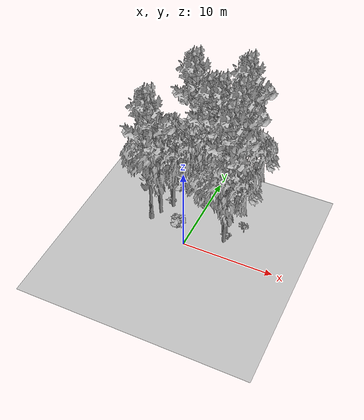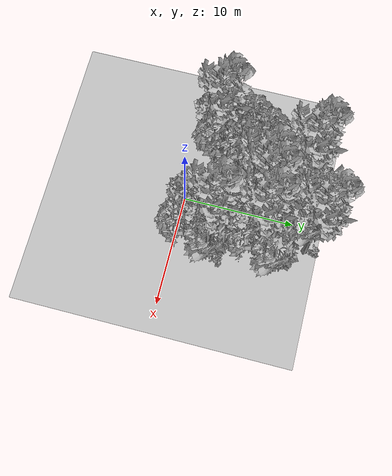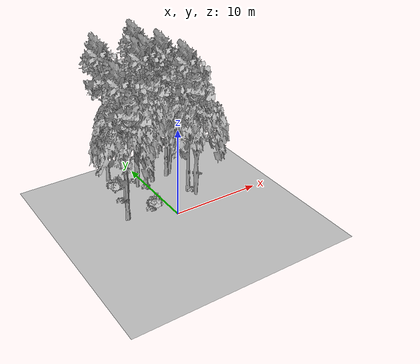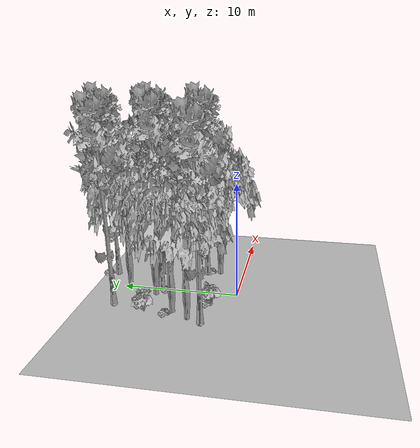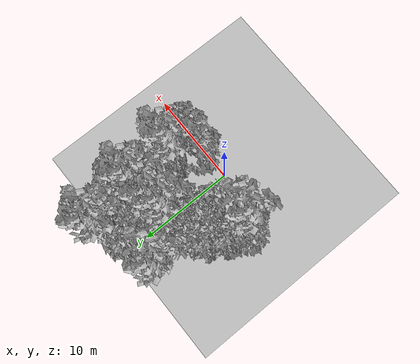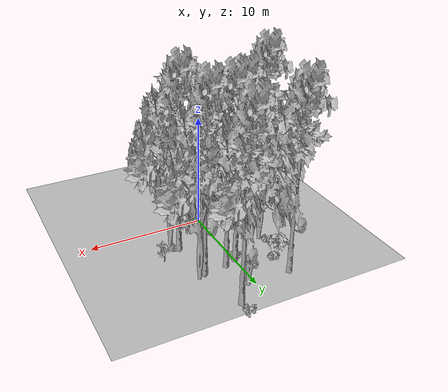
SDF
<sdf version="1.7">
 <world name="default">
  <model name="ground_plane">
   <static>1</static>
   <link name="link">
    <collision name="collision">
     <pose>-50 0 0 0 -0 0</pose>
     <geometry><plane><normal>0 0 1</normal><size>80 80</size></plane></geometry>
     <surface><contact><ode><min_depth>0.01</min_depth><max_vel>0</max_vel></ode></contact></surface>
    </collision>
    <visual name="grass">
     <cast_shadows>0</cast_shadows>
     <geometry>
      <mesh>
       <scale>0.46714285714285714 0.46714285714285714 0.1</scale>
       <uri>file://grass_plane/meshes/grass_plane.dae</uri>
      </mesh>
     </geometry>
    </visual>
   </link>
  </model>
  <model name="Tree 40">
   <static>1</static>
   <pose>-1.0467233313845625 6.8476148208145915 0 1.57079 -0 0</pose>
   <link name="link">
    <collision name="collision">
     <geometry><mesh><scale>3.5 5 3.5</scale><uri>model://tree_2/meshes/tree_2.obj</uri></mesh></geometry>
    </collision>
    <visual name="visual">
     <geometry><mesh><scale>3.5 5 3.5</scale><uri>model://tree_2/meshes/tree_2.obj</uri></mesh></geometry>
    </visual>
   </link>
  </model>
  <model name="Tree 43">
   <static>1</static>
   <pose>-3.139460617296727 9.802548207791261 0 1.57079 -0 0</pose>
   <link name="link">
    <collision name="collision">
     <geometry><mesh><scale>3.5 5 3.5</scale><uri>model://tree_9/meshes/tree_9.obj</uri></mesh></geometry>
    </collision>
    <visual name="visual">
     <geometry><mesh><scale>3.5 5 3.5</scale><uri>model://tree_9/meshes/tree_9.obj</uri></mesh></geometry>
    </visual>
   </link>
  </model>
  <model name="Tree 48">
   <static>1</static>
   <pose>3.6234909643433397 2.137317148740941 0 1.57079 -0 0</pose>
   <link name="link">
    <collision name="collision">
     <geometry><mesh><scale>3.5 5 3.5</scale><uri>model://tree_2/meshes/tree_2.obj</uri></mesh></geometry>
    </collision>
    <visual name="visual">
     <geometry><mesh><scale>3.5 5 3.5</scale><uri>model://tree_2/meshes/tree_2.obj</uri></mesh></geometry>
    </visual>
   </link>
  </model>
  <model name="Tree 158">
   <static>1</static>
   <pose>1.0044069190263514 6.9943192040304965 0 1.57079 -0 0</pose>
   <link name="link">
    <collision name="collision">
     <geometry><mesh><scale>3.5 5 3.5</scale><uri>model://tree_9/meshes/tree_9.obj</uri></mesh></geometry>
    </collision>
    <visual name="visual">
     <geometry><mesh><scale>3.5 5 3.5</scale><uri>model://tree_9/meshes/tree_9.obj</uri></mesh></geometry>
    </visual>
   </link>
  </model>
  <model name="Tree 188">
   <static>1</static>
   <pose>-4.355034216055486 3.243187131946428 0 1.57079 -0 0</pose>
   <link name="link">
    <collision name="collision">
     <geometry><mesh><scale>3.5 5 3.5</scale><uri>model://tree_2/meshes/tree_2.obj</uri></mesh></geometry>
    </collision>
    <visual name="visual">
     <geometry><mesh><scale>3.5 5 3.5</scale><uri>model://tree_2/meshes/tree_2.obj</uri></mesh></geometry>
    </visual>
   </link>
  </model>
  <model name="Tree 240">
   <static>1</static>
   <pose>3.4779019955699297 7.4093678368226605 0 1.57079 -0 0</pose>
   <link name="link">
    <collision name="collision">
     <geometry><mesh><scale>3.5 5 3.5</scale><uri>model://tree_2/meshes/tree_2.obj</uri></mesh></geometry>
    </collision>
    <visual name="visual">
     <geometry><mesh><scale>3.5 5 3.5</scale><uri>model://tree_2/meshes/tree_2.obj</uri></mesh></geometry>
    </visual>
   </link>
  </model>
  <model name="Tree 281">
   <static>1</static>
   <pose>-0.02546604632459548 6.618683134868775 0 1.57079 -0 0</pose>
   <link name="link">
    <collision name="collision">
     <geometry><mesh><scale>3.5 5 3.5</scale><uri>model://tree_9/meshes/tree_9.obj</uri></mesh></geometry>
    </collision>
    <visual name="visual">
     <geometry><mesh><scale>3.5 5 3.5</scale><uri>model://tree_9/meshes/tree_9.obj</uri></mesh></geometry>
    </visual>
   </link>
  </model>
  <model name="Tree 445">
   <static>1</static>
   <pose>2.155918015687611 11.48394048542837 0 1.57079 -0 0</pose>
   <link name="link">
    <collision name="collision">
     <geometry><mesh><scale>3.5 5 3.5</scale><uri>model://tree_9/meshes/tree_9.obj</uri></mesh></geometry>
    </collision>
    <visual name="visual">
     <geometry><mesh><scale>3.5 5 3.5</scale><uri>model://tree_9/meshes/tree_9.obj</uri></mesh></geometry>
    </visual>
   </link>
  </model>
  <model name="Tree 499">
   <static>1</static>
   <pose>-3.5315479463308748 4.695279299090309 0 1.57079 -0 0</pose>
   <link name="link">
    <collision name="collision">
     <geometry><mesh><scale>3.5 5 3.5</scale><uri>model://tree_2/meshes/tree_2.obj</uri></mesh></geometry>
    </collision>
    <visual name="visual">
     <geometry><mesh><scale>3.5 5 3.5</scale><uri>model://tree_2/meshes/tree_2.obj</uri></mesh></geometry>
    </visual>
   </link>
  </model>
  <model name="Tree 502">
   <static>1</static>
   <pose>0.4429989906952656 9.704830420514682 0 1.57079 -0 0</pose>
   <link name="link">
    <collision name="collision">
     <geometry><mesh><scale>3.5 5 3.5</scale><uri>model://tree_2/meshes/tree_2.obj</uri></mesh></geometry>
    </collision>
    <visual name="visual">
     <geometry><mesh><scale>3.5 5 3.5</scale><uri>model://tree_2/meshes/tree_2.obj</uri></mesh></geometry>
    </visual>
   </link>
  </model>
  <model name="Tree 554">
   <static>1</static>
   <pose>-4.812122258525946 2.068517010238125 0 1.57079 -0 0</pose>
   <link name="link">
    <collision name="collision">
     <geometry><mesh><scale>3.5 5 3.5</scale><uri>model://tree_9/meshes/tree_9.obj</uri></mesh></geometry>
    </collision>
    <visual name="visual">
     <geometry><mesh><scale>3.5 5 3.5</scale><uri>model://tree_9/meshes/tree_9.obj</uri></mesh></geometry>
    </visual>
   </link>
  </model>
  <model name="Tree 561">
   <static>1</static>
   <pose>3.433048380020317 3.295963137698294 0 1.57079 -0 0</pose>
   <link name="link">
    <collision name="collision">
     <geometry><mesh><scale>3.5 5 3.5</scale><uri>model://tree_9/meshes/tree_9.obj</uri></mesh></geometry>
    </collision>
    <visual name="visual">
     <geometry><mesh><scale>3.5 5 3.5</scale><uri>model://tree_9/meshes/tree_9.obj</uri></mesh></geometry>
    </visual>
   </link>
  </model>
  <model name="Tree 584">
   <static>1</static>
   <pose>3.03253156176752 7.2151118595305945 0 1.57079 -0 0</pose>
   <link name="link">
    <collision name="collision">
     <geometry><mesh><scale>3.5 5 3.5</scale><uri>model://tree_9/meshes/tree_9.obj</uri></mesh></geometry>
    </collision>
    <visual name="visual">
     <geometry><mesh><scale>3.5 5 3.5</scale><uri>model://tree_9/meshes/tree_9.obj</uri></mesh></geometry>
    </visual>
   </link>
  </model>
  <model name="Bush 130">
   <static>1</static>
   <pose>-1.9616733512314752 2.2161366435259 0 1.57079 -0 0</pose>
   <link name="link">
    <collision name="collision">
     <geometry><mesh><scale>2 2 2</scale><uri>model://bush_2/meshes/bush_2.obj</uri></mesh></geometry>
     <surface><contact><collide_without_contact>false</collide_without_contact></contact></surface>
    </collision>
    <visual name="visual">
     <geometry><mesh><scale>2 2 2</scale><uri>model://bush_2/meshes/bush_2.obj</uri></mesh></geometry>
    </visual>
   </link>
  </model>
  <model name="Bush 174">
   <static>1</static>
   <pose>-3.054240083380563 7.662170780521286 0 1.57079 -0 0</pose>
   <link name="link">
    <collision name="collision">
     <geometry><mesh><scale>2 2 2</scale><uri>model://bush_2/meshes/bush_2.obj</uri></mesh></geometry>
     <surface><contact><collide_without_contact>false</collide_without_contact></contact></surface>
    </collision>
    <visual name="visual">
     <geometry><mesh><scale>2 2 2</scale><uri>model://bush_2/meshes/bush_2.obj</uri></mesh></geometry>
    </visual>
   </link>
  </model>
  <model name="Bush 187">
   <static>1</static>
   <pose>1.966510457228992 12.322439530634426 0 1.57079 -0 0</pose>
   <link name="link">
    <collision name="collision">
     <geometry><mesh><scale>2 2 2</scale><uri>model://bush_2/meshes/bush_2.obj</uri></mesh></geometry>
     <surface><contact><collide_without_contact>false</collide_without_contact></contact></surface>
    </collision>
    <visual name="visual">
     <geometry><mesh><scale>2 2 2</scale><uri>model://bush_2/meshes/bush_2.obj</uri></mesh></geometry>
    </visual>
   </link>
  </model>
  <model name="Bush 217">
   <static>1</static>
   <pose>-0.8862825440286457 7.903778979567086 0 1.57079 -0 0</pose>
   <link name="link">
    <collision name="collision">
     <geometry><mesh><scale>2 2 2</scale><uri>model://bush_2/meshes/bush_2.obj</uri></mesh></geometry>
     <surface><contact><collide_without_contact>false</collide_without_contact></contact></surface>
    </collision>
    <visual name="visual">
     <geometry><mesh><scale>2 2 2</scale><uri>model://bush_2/meshes/bush_2.obj</uri></mesh></geometry>
    </visual>
   </link>
  </model>
  <model name="Bush 269">
   <static>1</static>
   <pose>3.6573063767779814 2.989316181620943 0 1.57079 -0 0</pose>
   <link name="link">
    <collision name="collision">
     <geometry><mesh><scale>2 2 2</scale><uri>model://bush_2/meshes/bush_2.obj</uri></mesh></geometry>
     <surface><contact><collide_without_contact>false</collide_without_contact></contact></surface>
    </collision>
    <visual name="visual">
     <geometry><mesh><scale>2 2 2</scale><uri>model://bush_2/meshes/bush_2.obj</uri></mesh></geometry>
    </visual>
   </link>
  </model>
  <model name="Bush 286">
   <static>1</static>
   <pose>-3.934063509147869 5.2382379769268965 0 1.57079 -0 0</pose>
   <link name="link">
    <collision name="collision">
     <geometry><mesh><scale>2 2 2</scale><uri>model://bush_2/meshes/bush_2.obj</uri></mesh></geometry>
     <surface><contact><collide_without_contact>false</collide_without_contact></contact></surface>
    </collision>
    <visual name="visual">
     <geometry><mesh><scale>2 2 2</scale><uri>model://bush_2/meshes/bush_2.obj</uri></mesh></geometry>
    </visual>
   </link>
  </model>
  <model name="Bush 326">
   <static>1</static>
   <pose>-1.5957979243060976 1.8554363265267284 0 1.57079 -0 0</pose>
   <link name="link">
    <collision name="collision">
     <geometry><mesh><scale>2 2 2</scale><uri>model://bush_1/meshes/bush_1.obj</uri></mesh></geometry>
     <surface><contact><collide_without_contact>false</collide_without_contact></contact></surface>
    </collision>
    <visual name="visual">
     <geometry><mesh><scale>2 2 2</scale><uri>model://bush_1/meshes/bush_1.obj</uri></mesh></geometry>
    </visual>
   </link>
  </model>
  <model name="Bush 470">
   <static>1</static>
   <pose>5.193973765710659 4.274239225133442 0 1.57079 -0 0</pose>
   <link name="link">
    <collision name="collision">
     <geometry><mesh><scale>2 2 2</scale><uri>model://bush_5/meshes/bush_5.obj</uri></mesh></geometry>
     <surface><contact><collide_without_contact>false</collide_without_contact></contact></surface>
    </collision>
    <visual name="visual">
     <geometry><mesh><scale>2 2 2</scale><uri>model://bush_5/meshes/bush_5.obj</uri></mesh></geometry>
    </visual>
   </link>
  </model>
  <model name="Bush 561">
   <static>1</static>
   <pose>-0.31297455210397374 6.113319047468735 0 1.57079 -0 0</pose>
   <link name="link">
    <collision name="collision">
     <geometry><mesh><scale>2 2 2</scale><uri>model://bush_2/meshes/bush_2.obj</uri></mesh></geometry>
     <surface><contact><collide_without_contact>false</collide_without_contact></contact></surface>
    </collision>
    <visual name="visual">
     <geometry><mesh><scale>2 2 2</scale><uri>model://bush_2/meshes/bush_2.obj</uri></mesh></geometry>
    </visual>
   </link>
  </model>
  <model name="Bush 563">
   <static>1</static>
   <pose>-3.717701741255233 7.013495873404565 0 1.57079 -0 0</pose>
   <link name="link">
    <collision name="collision">
     <geometry><mesh><scale>2 2 2</scale><uri>model://bush_1/meshes/bush_1.obj</uri></mesh></geometry>
     <surface><contact><collide_without_contact>false</collide_without_contact></contact></surface>
    </collision>
    <visual name="visual">
     <geometry><mesh><scale>2 2 2</scale><uri>model://bush_1/meshes/bush_1.obj</uri></mesh></geometry>
    </visual>
   </link>
  </model>
 </world>
</sdf>
